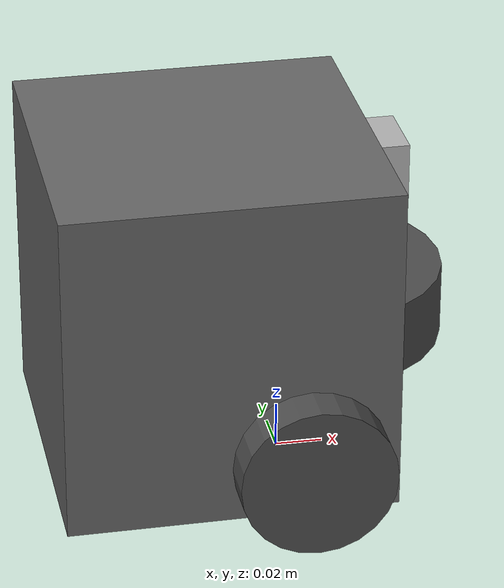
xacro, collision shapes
<?xml version="1.0" ?>
<robot name="turtlebot3_burger_for_autorace_2020" xmlns:xacro="http://ros.org/wiki/xacro">
  <xacro:include filename="$(find turtlebot3_description)/urdf/common_properties.xacro"/>
  <xacro:include filename="$(find turtlebot3_description)/urdf/turtlebot3_burger_for_autorace_2020.gazebo.xacro"/>

  <link name="base_footprint"/>

  <joint name="base_joint" type="fixed">
    <parent link="base_footprint"/>
    <child link="base_link"/>
    <origin xyz="0.0 0.0 0.010" rpy="0 0 0"/>
  </joint>

  <link name="base_link">
    <visual>
      <origin xyz="-0.032 0 0.0" rpy="0 0 0"/>
      <geometry>
        <mesh filename="package://turtlebot3_description/meshes/bases/burger_base.stl" scale="0.001 0.001 0.001"/>
      </geometry>
      <material name="light_black"/>
    </visual>

    <collision>
      <origin xyz="-0.032 0 0.070" rpy="0 0 0"/>
      <geometry>
        <box size="0.140 0.140 0.143"/>
      </geometry>
    </collision>

    <inertial>
      <origin xyz="-0.016 0 0" rpy="0 0 0"/>
      <mass value="8.2573504"/>
      <inertia ixx="2.2124416e-02" ixy="-1.2294101e-04" ixz="3.4938785e-04"
               iyy="2.1193702e-02" iyz="-5.0120904e-05"
               izz="2.0064271e-02" />
    </inertial>
  </link>

  <joint name="wheel_left_joint" type="continuous">
    <parent link="base_link"/>
    <child link="wheel_left_link"/>
    <origin xyz="0.0 0.08 0.023" rpy="-1.5707 0 0"/>
    <axis xyz="0 0 1"/>
  </joint>

  <link name="wheel_left_link">
    <visual>
      <origin xyz="0 0 0" rpy="1.5707 0 0"/>
      <geometry>
        <mesh filename="package://turtlebot3_description/meshes/wheels/left_tire.stl" scale="0.001 0.001 0.001"/>
      </geometry>
      <material name="dark"/>
    </visual>

    <collision>
      <origin xyz="0 0 0" rpy="0 0 0"/>
      <geometry>
        <cylinder length="0.018" radius="0.033"/>
      </geometry>
    </collision>

    <inertial>
      <origin xyz="0 0 0" />
      <mass value="2.8498940" />
      <inertia ixx="1.1175580e-03" ixy="-4.2369783e-08" ixz="-5.9381719e-07"
               iyy="1.1192413e-03" iyz="-1.4400107e-08"
               izz="2.0712558e-03" />
      </inertial>
  </link>

  <joint name="wheel_right_joint" type="continuous">
    <parent link="base_link"/>
    <child link="wheel_right_link"/>
    <origin xyz="0.0 -0.080 0.023" rpy="-1.5707 0 0"/>
    <axis xyz="0 0 1"/>
  </joint>

  <link name="wheel_right_link">
    <visual>
      <origin xyz="0 0 0" rpy="1.5707 0 0"/>
      <geometry>
        <mesh filename="package://turtlebot3_description/meshes/wheels/right_tire.stl" scale="0.001 0.001 0.001"/>
      </geometry>
      <material name="dark"/>
    </visual>

    <collision>
      <origin xyz="0 0 0" rpy="0 0 0"/>
      <geometry>
        <cylinder length="0.018" radius="0.033"/>
      </geometry>
    </collision>

    <inertial>
      <origin xyz="0 0 0" />
      <mass value="2.8498940" />
      <inertia ixx="1.1175580e-03" ixy="-4.2369783e-08" ixz="-5.9381719e-07"
               iyy="1.1192413e-03" iyz="-1.4400107e-08"
               izz="2.0712558e-03" />
      </inertial>
  </link>

  <joint name="caster_back_joint" type="fixed">
    <parent link="base_link"/>
    <child link="caster_back_link"/>
    <origin xyz="-0.081 0 -0.004" rpy="-1.5707 0 0"/>
  </joint>

  <link name="caster_back_link">
    <collision>
      <origin xyz="0 0.000 0" rpy="0 0 0"/>
      <geometry>
        <box size="0.030 0.009 0.020"/>
      </geometry>
    </collision>

    <inertial>
      <origin xyz="0 0 0" />
      <mass value="0.000001" />
      <inertia ixx="0.000001" ixy="0.0" ixz="0.0"
               iyy="0.000001" iyz="0.0"
               izz="0.000001" />
    </inertial>
  </link>

  <joint name="imu_joint" type="fixed">
    <parent link="base_link"/>
    <child link="imu_link"/>
    <origin xyz="-0.032 0 0.068" rpy="0 0 0"/>
  </joint>

  <link name="imu_link"/>

  <joint name="scan_joint" type="fixed">
    <parent link="base_link"/>
    <child link="base_scan"/>
    <origin xyz="0.0 0 0.07" rpy="0 0 0"/>
  </joint>

  <link name="base_scan">
    <visual>
      <origin xyz="0 0 0.0" rpy="0 0 0"/>
      <geometry>
        <mesh filename="package://turtlebot3_description/meshes/sensors/lds.stl" scale="0.001 0.001 0.001"/>
      </geometry>
      <material name="dark"/>
    </visual>

    <collision>
      <origin xyz="0.015 0 -0.0065" rpy="0 0 0"/>
      <geometry>
        <cylinder length="0.0315" radius="0.055"/>
      </geometry>
    </collision>

    <inertial>
      <mass value="0.114" />
      <origin xyz="0 0 0" />
      <inertia ixx="0.001" ixy="0.0" ixz="0.0"
               iyy="0.001" iyz="0.0"
               izz="0.001" />
    </inertial>
  </link>

  <joint name="camera_dummy_joint" type="fixed">
    <origin xyz="0.040 -0.000 0.110" rpy="0 0 0"/>
    <parent link="base_link"/>
    <child link="camera_dummy_link"/>
  </joint>

  <link name="camera_dummy_link">
    <collision>
      <origin xyz="0.005 0.000 0.013" rpy="0 0 0"/>
      <geometry>
        <box size="0.015 0.030 0.027"/>
      </geometry>
    </collision>
  </link>

  <joint name="camera_joint" type="fixed">
    <origin xyz="0.003 0.000 0.009" rpy="0 0 0"/>
    <parent link="camera_dummy_link"/>
    <child link="camera_frame"/>
  </joint>
  <link name="camera_frame"/>

  <joint name="camera_optical_joint" type="fixed">
    <origin xyz="0 0 0" rpy="-1.5707 0 -1.57"/>
    <parent link="camera_frame"/>
    <child link="camera_optical_frame"/>
  </joint>
  <link name="camera_optical_frame"/>

</robot>

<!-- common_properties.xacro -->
<robot name="xacro_properties" xmlns:xacro="http://ros.org/wiki/xacro">

  <!-- Init colour -->
  <material name="black">
      <color rgba="0.0 0.0 0.0 1.0"/>
  </material>

  <material name="dark">
    <color rgba="0.3 0.3 0.3 1.0"/>
  </material>
  <material name="light_black">
    <color rgba="0.4 0.4 0.4 1.0"/>
  </material>

  <material name="matte_black">
    <color rgba="0.02 0.02 0.018 1.0"/>
  </material>

  <material name="charcoal">
    <color rgba="0.12 0.12 0.115 1.0"/>
  </material>

  <material name="blue">
    <color rgba="0.0 0.0 0.8 1.0"/>
  </material>

  <material name="green">
    <color rgba="0.0 0.8 0.0 1.0"/>
  </material>

  <material name="grey">
    <color rgba="0.5 0.5 0.5 1.0"/>
  </material>

  <material name="orange">
    <color rgba="${255/255} ${108/255} ${10/255} 1.0"/>
  </material>

  <material name="safety_yellow">
    <color rgba="${245/255} ${190/255} ${32/255} 1.0"/>
  </material>

  <material name="sensor_glass">
    <color rgba="0.01 0.025 0.035 1.0"/>
  </material>

  <material name="brown">
    <color rgba="${222/255} ${207/255} ${195/255} 1.0"/>
  </material>

  <material name="red">
    <color rgba="0.8 0.0 0.0 1.0"/>
  </material>

  <material name="white">
    <color rgba="1.0 1.0 1.0 1.0"/>
  </material>
</robot>
